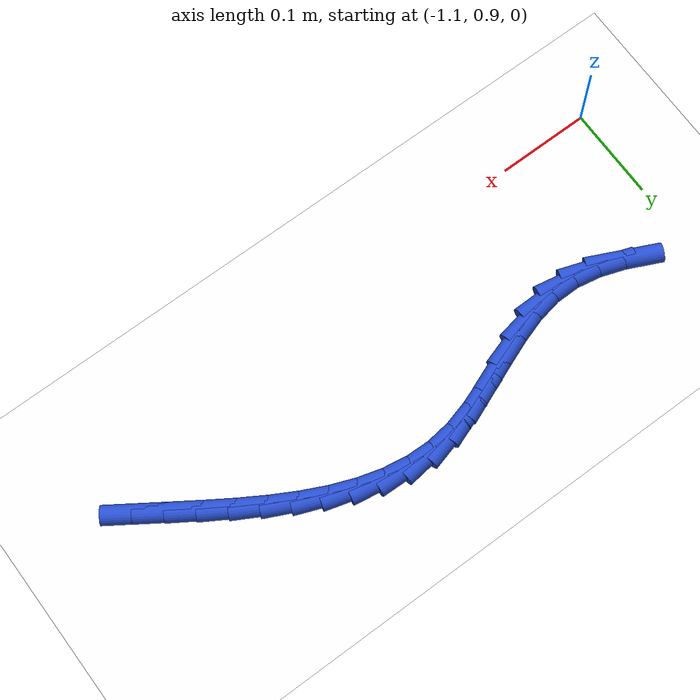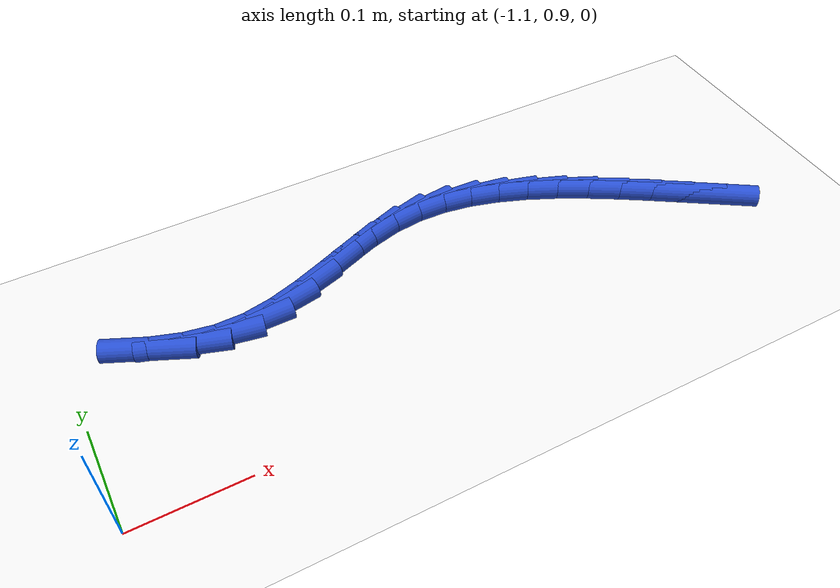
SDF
<sdf version="1.6">
 <world name="default">
  <model name="ground_plane">
   <static>1</static>
   <link name="link">
    <collision name="collision">
     <geometry><plane><normal>0 0 1</normal><size>100 100</size></plane></geometry>
     <surface><friction><ode><mu>100</mu><mu2>50</mu2></ode></friction></surface>
    </collision>
    <visual name="visual">
     <cast_shadows>0</cast_shadows>
     <geometry><plane><normal>0 0 1</normal><size>100 100</size></plane></geometry>
     <material>
      <script><uri>file://media/materials/scripts/gazebo.material</uri><name>Gazebo/WhiteGlow</name></script>
     </material>
    </visual>
   </link>
  </model>
  <model name="line">
   <link name="link_40">
    <pose>-0.500376328763951 0.9767820344583298 0.01 0 1.57 -0.587453980085998</pose>
    <collision name="collision">
     <geometry><cylinder><radius>0.01</radius><length>0.08</length></cylinder></geometry>
    </collision>
    <visual name="visual">
     <material>
      <script><name>Gazebo/Blue</name><uri>file://media/materials/scripts/gazebo.material</uri></script>
     </material>
     <geometry><cylinder><radius>0.01</radius><length>0.08</length></cylinder></geometry>
    </visual>
   </link>
   <link name="link_41">
    <pose>-0.5257052904424686 0.9936479441568535 0.01 0 1.57 -0.5851930315225743</pose>
    <collision name="collision">
     <geometry><cylinder><radius>0.01</radius><length>0.08</length></cylinder></geometry>
    </collision>
    <visual name="visual">
     <material>
      <script><name>Gazebo/Blue</name><uri>file://media/materials/scripts/gazebo.material</uri></script>
     </material>
     <geometry><cylinder><radius>0.01</radius><length>0.08</length></cylinder></geometry>
    </visual>
   </link>
   <link name="link_42">
    <pose>-0.5513058913543827 1.0106113112254147 0.01 0 1.57 -0.5705512847842199</pose>
    <collision name="collision">
     <geometry><cylinder><radius>0.01</radius><length>0.08</length></cylinder></geometry>
    </collision>
    <visual name="visual">
     <material>
      <script><name>Gazebo/Blue</name><uri>file://media/materials/scripts/gazebo.material</uri></script>
     </material>
     <geometry><cylinder><radius>0.01</radius><length>0.08</length></cylinder></geometry>
    </visual>
   </link>
   <link name="link_43">
    <pose>-0.5771560855449007 1.0272005855010071 0.01 0 1.57 -0.5430795092193399</pose>
    <collision name="collision">
     <geometry><cylinder><radius>0.01</radius><length>0.08</length></cylinder></geometry>
    </collision>
    <visual name="visual">
     <material>
      <script><name>Gazebo/Blue</name><uri>file://media/materials/scripts/gazebo.material</uri></script>
     </material>
     <geometry><cylinder><radius>0.01</radius><length>0.08</length></cylinder></geometry>
    </visual>
   </link>
   <link name="link_44">
    <pose>-0.6032342223228504 1.042941959184755 0.01 0 1.57 -0.5017685302095107</pose>
    <collision name="collision">
     <geometry><cylinder><radius>0.01</radius><length>0.08</length></cylinder></geometry>
    </collision>
    <visual name="visual">
     <material>
      <script><name>Gazebo/Blue</name><uri>file://media/materials/scripts/gazebo.material</uri></script>
     </material>
     <geometry><cylinder><radius>0.01</radius><length>0.08</length></cylinder></geometry>
    </visual>
   </link>
   <link name="link_45">
    <pose>-0.6295186509970614 1.0573616244777857 0.01 0 1.57 -0.4450297321661276</pose>
    <collision name="collision">
     <geometry><cylinder><radius>0.01</radius><length>0.08</length></cylinder></geometry>
    </collision>
    <visual name="visual">
     <material>
      <script><name>Gazebo/Blue</name><uri>file://media/materials/scripts/gazebo.material</uri></script>
     </material>
     <geometry><cylinder><radius>0.01</radius><length>0.08</length></cylinder></geometry>
    </visual>
   </link>
   <link name="link_46">
    <pose>-0.655987720876362 1.0699857735812242 0.01 0 1.57 -0.37082320882095143</pose>
    <collision name="collision">
     <geometry><cylinder><radius>0.01</radius><length>0.08</length></cylinder></geometry>
    </collision>
    <visual name="visual">
     <material>
      <script><name>Gazebo/Blue</name><uri>file://media/materials/scripts/gazebo.material</uri></script>
     </material>
     <geometry><cylinder><radius>0.01</radius><length>0.08</length></cylinder></geometry>
    </visual>
   </link>
   <link name="link_47">
    <pose>-0.6826197812695807 1.0803405986961965 0.01 0 1.57 -0.27699216461119053</pose>
    <collision name="collision">
     <geometry><cylinder><radius>0.01</radius><length>0.08</length></cylinder></geometry>
    </collision>
    <visual name="visual">
     <material>
      <script><name>Gazebo/Blue</name><uri>file://media/materials/scripts/gazebo.material</uri></script>
     </material>
     <geometry><cylinder><radius>0.01</radius><length>0.08</length></cylinder></geometry>
    </visual>
   </link>
   <link name="link_48">
    <pose>-0.7093931814855465 1.0879522920238285 0.01 0 1.57 -0.16198394295709873</pose>
    <collision name="collision">
     <geometry><cylinder><radius>0.01</radius><length>0.08</length></cylinder></geometry>
    </collision>
    <visual name="visual">
     <material>
      <script><name>Gazebo/Blue</name><uri>file://media/materials/scripts/gazebo.material</uri></script>
     </material>
     <geometry><cylinder><radius>0.01</radius><length>0.08</length></cylinder></geometry>
    </visual>
   </link>
   <link name="link_49">
    <pose>-0.7362862708330875 1.0923470457652456 0.01 0 1.57 -0.026076967880432046</pose>
    <collision name="collision">
     <geometry><cylinder><radius>0.01</radius><length>0.08</length></cylinder></geometry>
    </collision>
    <visual name="visual">
     <material>
      <script><name>Gazebo/Blue</name><uri>file://media/materials/scripts/gazebo.material</uri></script>
     </material>
     <geometry><cylinder><radius>0.01</radius><length>0.08</length></cylinder></geometry>
    </visual>
   </link>
   <link name="link_50">
    <pose>-0.763277398621033 1.0930510521215742 0.01 0 1.57 0.126999701816529</pose>
    <collision name="collision">
     <geometry><cylinder><radius>0.01</radius><length>0.08</length></cylinder></geometry>
    </collision>
    <visual name="visual">
     <material>
      <script><name>Gazebo/Blue</name><uri>file://media/materials/scripts/gazebo.material</uri></script>
     </material>
     <geometry><cylinder><radius>0.01</radius><length>0.08</length></cylinder></geometry>
    </visual>
   </link>
   <link name="link_51">
    <pose>-0.7903449107371074 1.0895948847225505 0.01 0 1.57 0.26878209734586767</pose>
    <collision name="collision">
     <geometry><cylinder><radius>0.01</radius><length>0.08</length></cylinder></geometry>
    </collision>
    <visual name="visual">
     <material>
      <script><name>Gazebo/Blue</name><uri>file://media/materials/scripts/gazebo.material</uri></script>
     </material>
     <geometry><cylinder><radius>0.01</radius><length>0.08</length></cylinder></geometry>
    </visual>
   </link>
   <link name="link_52">
    <pose>-0.8174666727488402 1.0821242661901158 0.01 0 1.57 0.35597840947852405</pose>
    <collision name="collision">
     <geometry><cylinder><radius>0.01</radius><length>0.08</length></cylinder></geometry>
    </collision>
    <visual name="visual">
     <material>
      <script><name>Gazebo/Blue</name><uri>file://media/materials/scripts/gazebo.material</uri></script>
     </material>
     <geometry><cylinder><radius>0.01</radius><length>0.08</length></cylinder></geometry>
    </visual>
   </link>
   <link name="link_53">
    <pose>-0.8446195793556127 1.0720283158809307 0.01 0 1.57 0.39055654548071</pose>
    <collision name="collision">
     <geometry><cylinder><radius>0.01</radius><length>0.08</length></cylinder></geometry>
    </collision>
    <visual name="visual">
     <material>
      <script><name>Gazebo/Blue</name><uri>file://media/materials/scripts/gazebo.material</uri></script>
     </material>
     <geometry><cylinder><radius>0.01</radius><length>0.08</length></cylinder></geometry>
    </visual>
   </link>
   <link name="link_54">
    <pose>-0.8717804082150313 1.0608460492646994 0.01 0 1.57 0.3764143237835546</pose>
    <collision name="collision">
     <geometry><cylinder><radius>0.01</radius><length>0.08</length></cylinder></geometry>
    </collision>
    <visual name="visual">
     <material>
      <script><name>Gazebo/Blue</name><uri>file://media/materials/scripts/gazebo.material</uri></script>
     </material>
     <geometry><cylinder><radius>0.01</radius><length>0.08</length></cylinder></geometry>
    </visual>
   </link>
   <link name="link_55">
    <pose>-0.8989259369847026 1.050116481811126 0.01 0 1.57 0.3118301706937674</pose>
    <collision name="collision">
     <geometry><cylinder><radius>0.01</radius><length>0.08</length></cylinder></geometry>
    </collision>
    <visual name="visual">
     <material>
      <script><name>Gazebo/Blue</name><uri>file://media/materials/scripts/gazebo.material</uri></script>
     </material>
     <geometry><cylinder><radius>0.01</radius><length>0.08</length></cylinder></geometry>
    </visual>
   </link>
   <link name="link_56">
    <pose>-0.926032943322232 1.0413786289899145 0.01 0 1.57 0.1902061707704024</pose>
    <collision name="collision">
     <geometry><cylinder><radius>0.01</radius><length>0.08</length></cylinder></geometry>
    </collision>
    <visual name="visual">
     <material>
      <script><name>Gazebo/Blue</name><uri>file://media/materials/scripts/gazebo.material</uri></script>
     </material>
     <geometry><cylinder><radius>0.01</radius><length>0.08</length></cylinder></geometry>
    </visual>
   </link>
   <link name="link_57">
    <pose>-0.9530782048852259 1.036171506270769 0.01 0 1.57 0.008145959631315234</pose>
    <collision name="collision">
     <geometry><cylinder><radius>0.01</radius><length>0.08</length></cylinder></geometry>
    </collision>
    <visual name="visual">
     <material>
      <script><name>Gazebo/Blue</name><uri>file://media/materials/scripts/gazebo.material</uri></script>
     </material>
     <geometry><cylinder><radius>0.01</radius><length>0.08</length></cylinder></geometry>
    </visual>
   </link>
   <link name="link_58">
    <pose>-0.9800387461718391 1.0359518819319427 0.01 0 1.57 -0.1807595156623004</pose>
    <collision name="collision">
     <geometry><cylinder><radius>0.01</radius><length>0.08</length></cylinder></geometry>
    </collision>
    <visual name="visual">
     <material>
      <script><name>Gazebo/Blue</name><uri>file://media/materials/scripts/gazebo.material</uri></script>
     </material>
     <geometry><cylinder><radius>0.01</radius><length>0.08</length></cylinder></geometry>
    </visual>
   </link>
   <link name="link_59">
    <pose>-1.0068955426060162 1.0408600770474845 0.01 0 1.57 -0.32862777557520384</pose>
    <collision name="collision">
     <geometry><cylinder><radius>0.01</radius><length>0.08</length></cylinder></geometry>
    </collision>
    <visual name="visual">
     <material>
      <script><name>Gazebo/Blue</name><uri>file://media/materials/scripts/gazebo.material</uri></script>
     </material>
     <geometry><cylinder><radius>0.01</radius><length>0.08</length></cylinder></geometry>
    </visual>
   </link>
   <link name="link_60">
    <pose>-1.0336327483438492 1.0499772601610495 0.01 0 1.57 -0.43548794238833743</pose>
    <collision name="collision">
     <geometry><cylinder><radius>0.01</radius><length>0.08</length></cylinder></geometry>
    </collision>
    <visual name="visual">
     <material>
      <script><name>Gazebo/Blue</name><uri>file://media/materials/scripts/gazebo.material</uri></script>
     </material>
     <geometry><cylinder><radius>0.01</radius><length>0.08</length></cylinder></geometry>
    </visual>
   </link>
  </model>
 </world>
</sdf>
